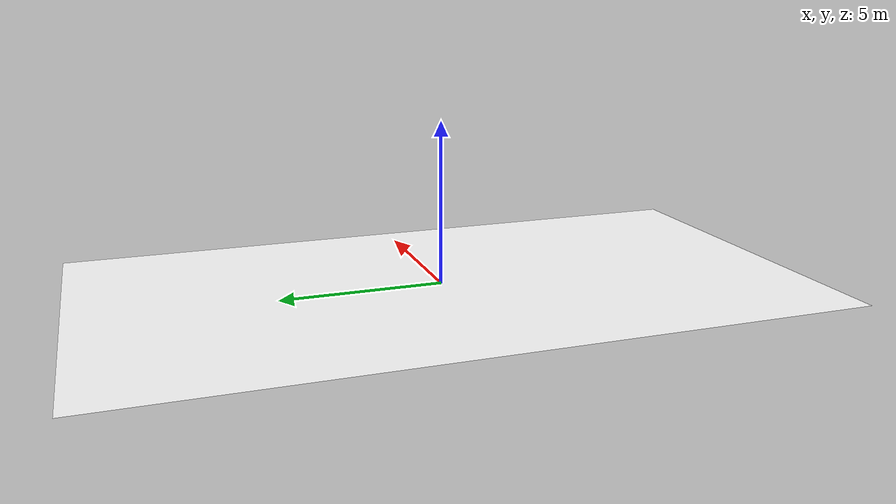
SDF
<?xml version="1.0" ?>
<sdf version="1.7">
  <model name="hangar_floor">
        <pose>0 0 0 0 0 0</pose>
    <static>true</static>
    <link name='link'>
      <visual name='visual'>
        <pose>0 0 0.001 0 0 0</pose>
        <geometry>
          <mesh>
            <uri>model://hangar_floor/meshes/hangar_floor11x21.dae</uri>
          </mesh>
        </geometry>
        <material>
          <diffuse>1 1 1</diffuse>
          <specular>0.05 0.05 0.05 1</specular>
          <pbr>
            <metal>
              <albedo_map>model://hangar_floor/meshes/textures/hangar_floor_albedo.png</albedo_map>
              <roughness_map>model://hangar_floor/meshes/textures/hangar_floor_roughness.png</roughness_map>
              <normal_map>model://hangar_floor/meshes/textures/hangar_floor_normal.png</normal_map>
            </metal>
          </pbr>
        </material>
      </visual>
      <collision name='collision'>
        <geometry>
          <plane>
            <size>20 20</size>
          </plane>
        </geometry>
      </collision>
    </link>
  </model>
</sdf>
